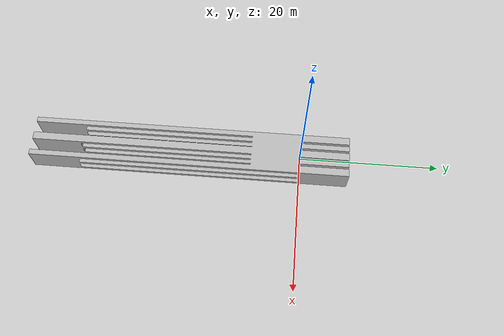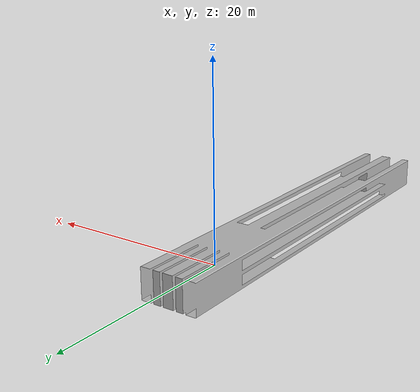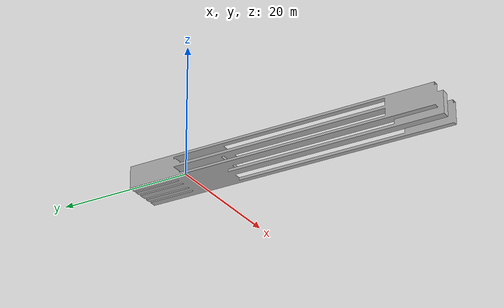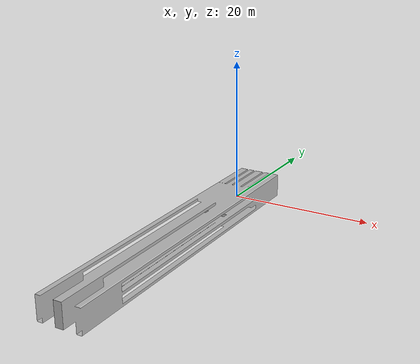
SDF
<?xml version="1.0" ?>
<sdf version="1.4">
	<model name="pallet145mm">
		<static>true</static>
		<link name="link">
			<pose>0 0 0.0125 0 0 0</pose>
			<collision name="collision">
				<geometry>
					<mesh>
						<uri>model://pallet25mm/mesh/pallet.dae</uri>
						<scale>0.787 32 0.28</scale>
					</mesh>
				</geometry>

			</collision>
			<visual name="visual">
				<geometry>
					<mesh>
						<uri>model://pallet25mm/mesh/pallet.dae</uri>
						<scale>0.787 32 0.28</scale>
					</mesh>
				</geometry>
			</visual>
		</link>
	</model>
</sdf>
